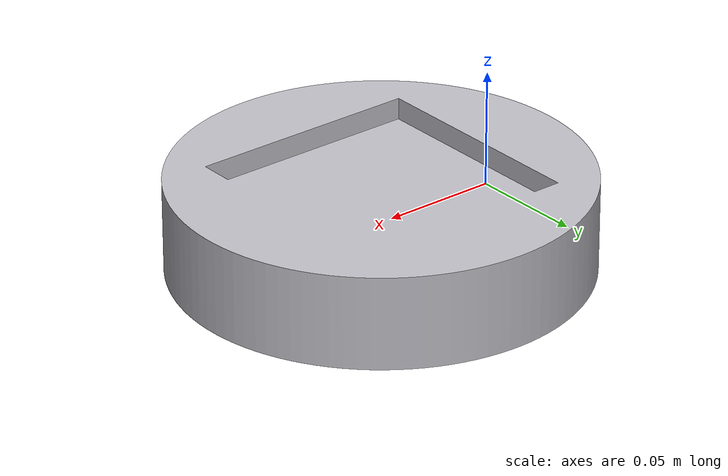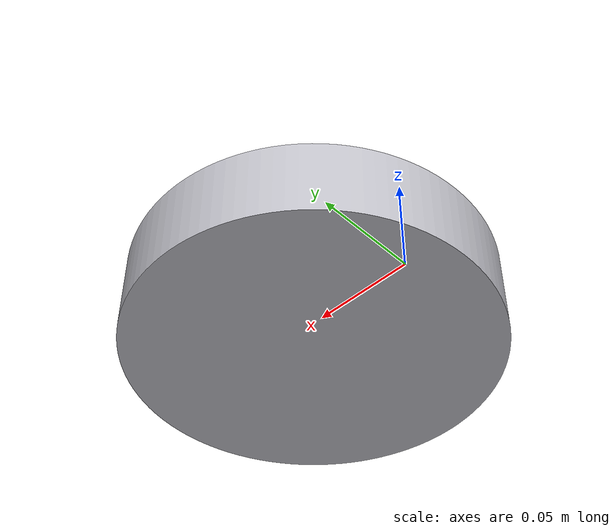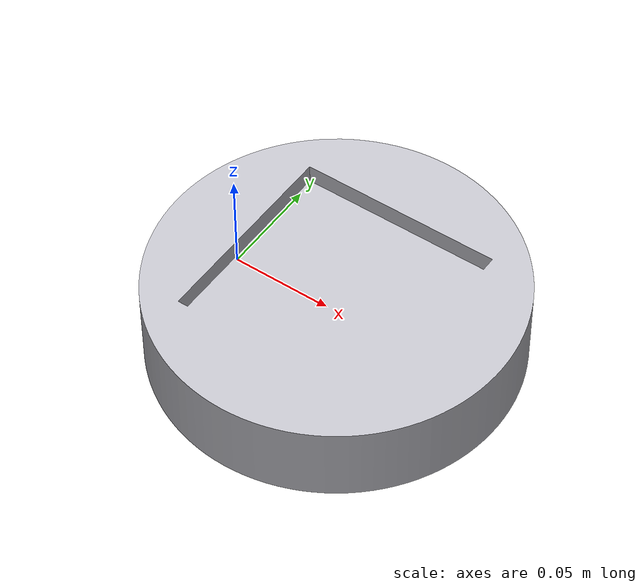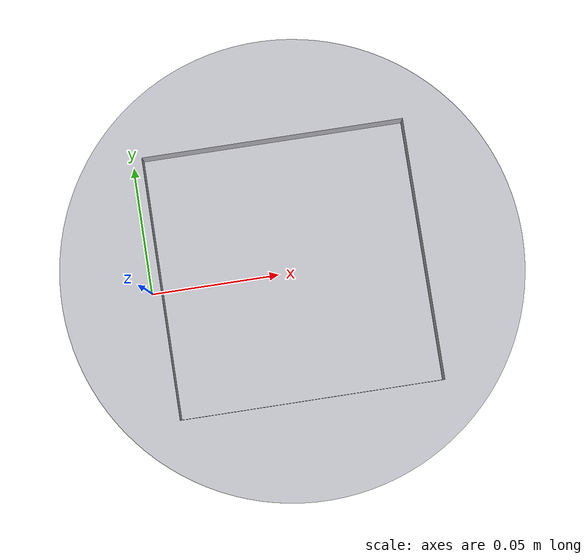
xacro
<?xml version="1.0" ?>
<robot name="(Unsaved)" xmlns:xacro="http://www.ros.org/wiki/xacro">

<xacro:include filename="$(find (Unsaved)_description)/urdf/materials.xacro" />
<xacro:include filename="$(find (Unsaved)_description)/urdf/(Unsaved).trans" />
<xacro:include filename="$(find (Unsaved)_description)/urdf/(Unsaved).gazebo" />
<link name="base_link">
  <inertial>
    <origin xyz="-0.1283566097000591 -0.00106461515978344 0.19125025666324613" rpy="0 0 0"/>
    <mass value="28.612650776803523"/>
    <inertia ixx="0.74269" iyy="2.0089" izz="1.633022" ixy="0.005445" iyz="-0.004649" ixz="0.255133"/>
  </inertial>
  <visual>
    <origin xyz="0 0 0" rpy="0 0 0"/>
    <geometry>
      <mesh filename="package://(Unsaved)_description/meshes/base_link.stl" scale="0.001 0.001 0.001"/>
    </geometry>
    <material name="silver"/>
  </visual>
  <collision>
    <origin xyz="0 0 0" rpy="0 0 0"/>
    <geometry>
      <mesh filename="package://(Unsaved)_description/meshes/base_link.stl" scale="0.001 0.001 0.001"/>
    </geometry>
  </collision>
</link>

</robot>

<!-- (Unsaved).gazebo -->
<robot name="(Unsaved)" xmlns:xacro="http://www.ros.org/wiki/xacro" >

<xacro:property name="body_color" value="Gazebo/Silver" />

<gazebo>
  <plugin name="control" filename="libgazebo_ros_control.so"/>
</gazebo>
<gazebo reference="base_link">
  <material>${body_color}</material>
  <mu1>0.2</mu1>
  <mu2>0.2</mu2>
  <selfCollide>true</selfCollide>
  <gravity>true</gravity>
</gazebo>

</robot>
